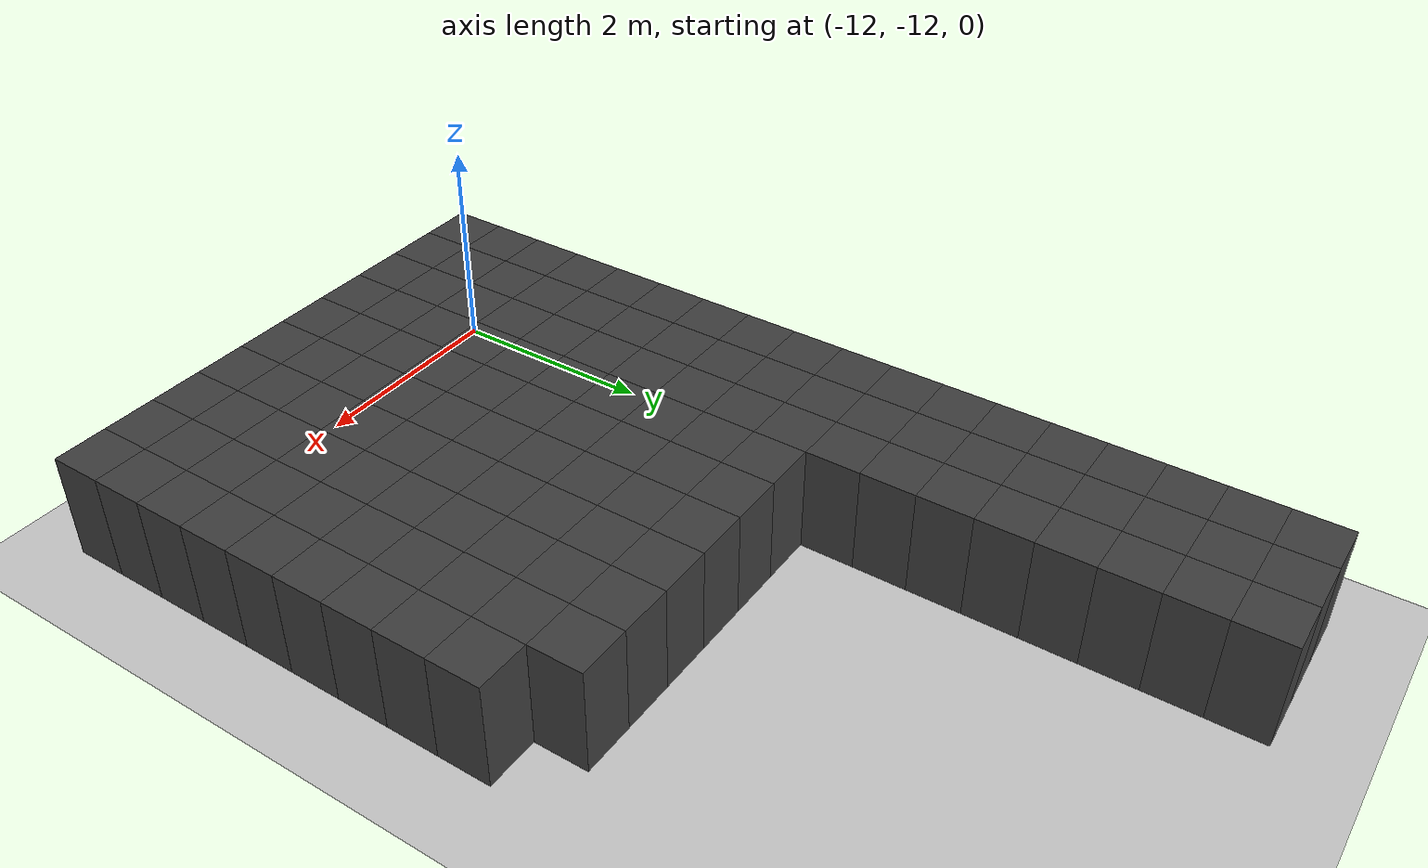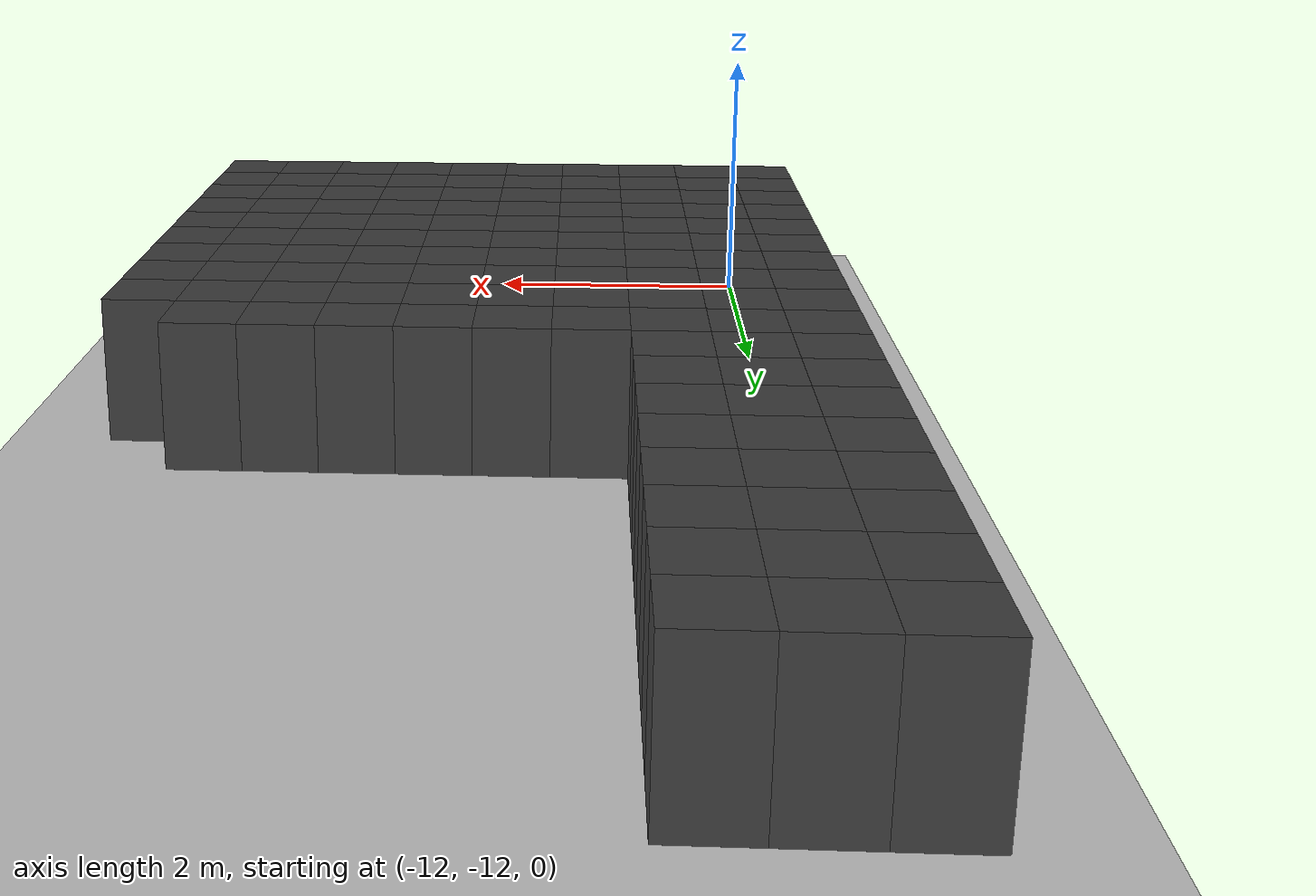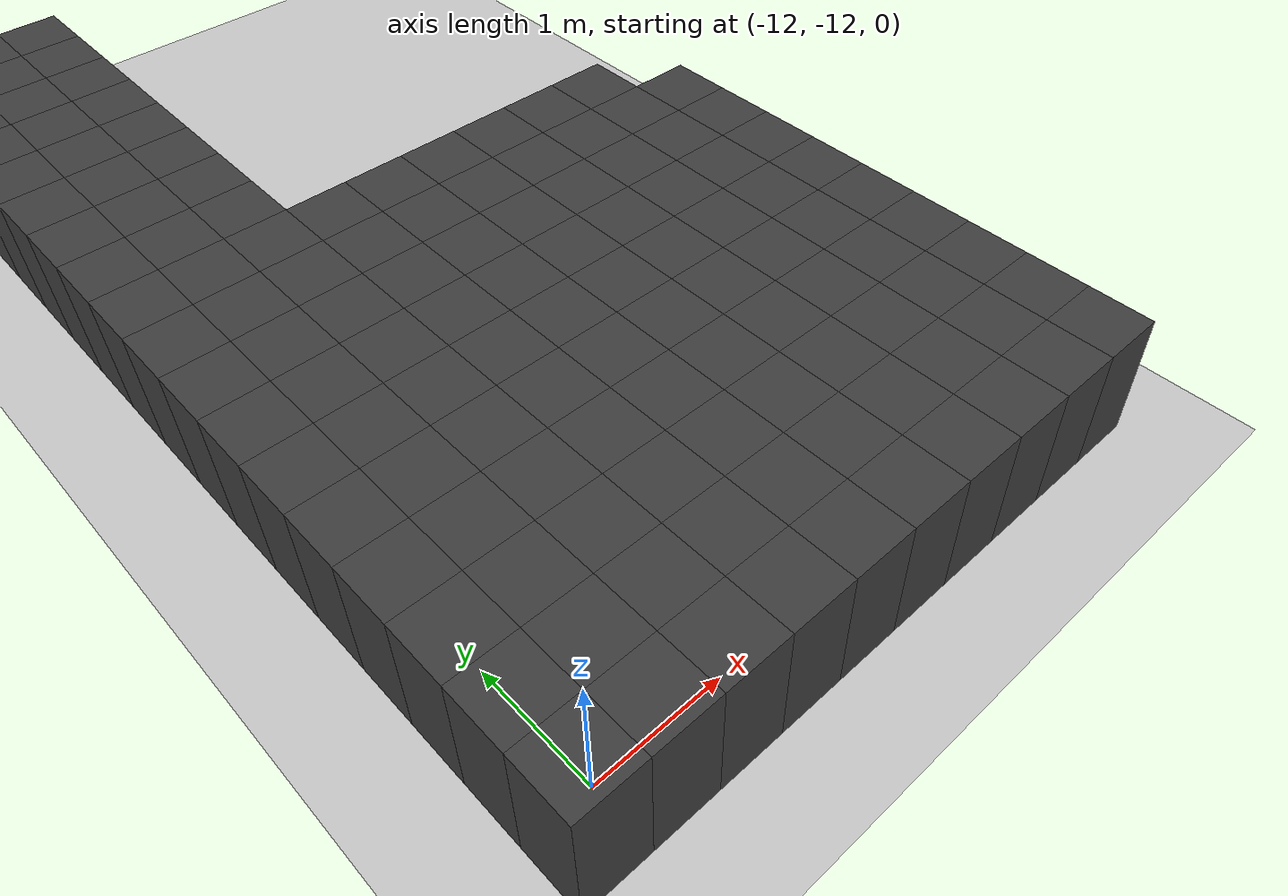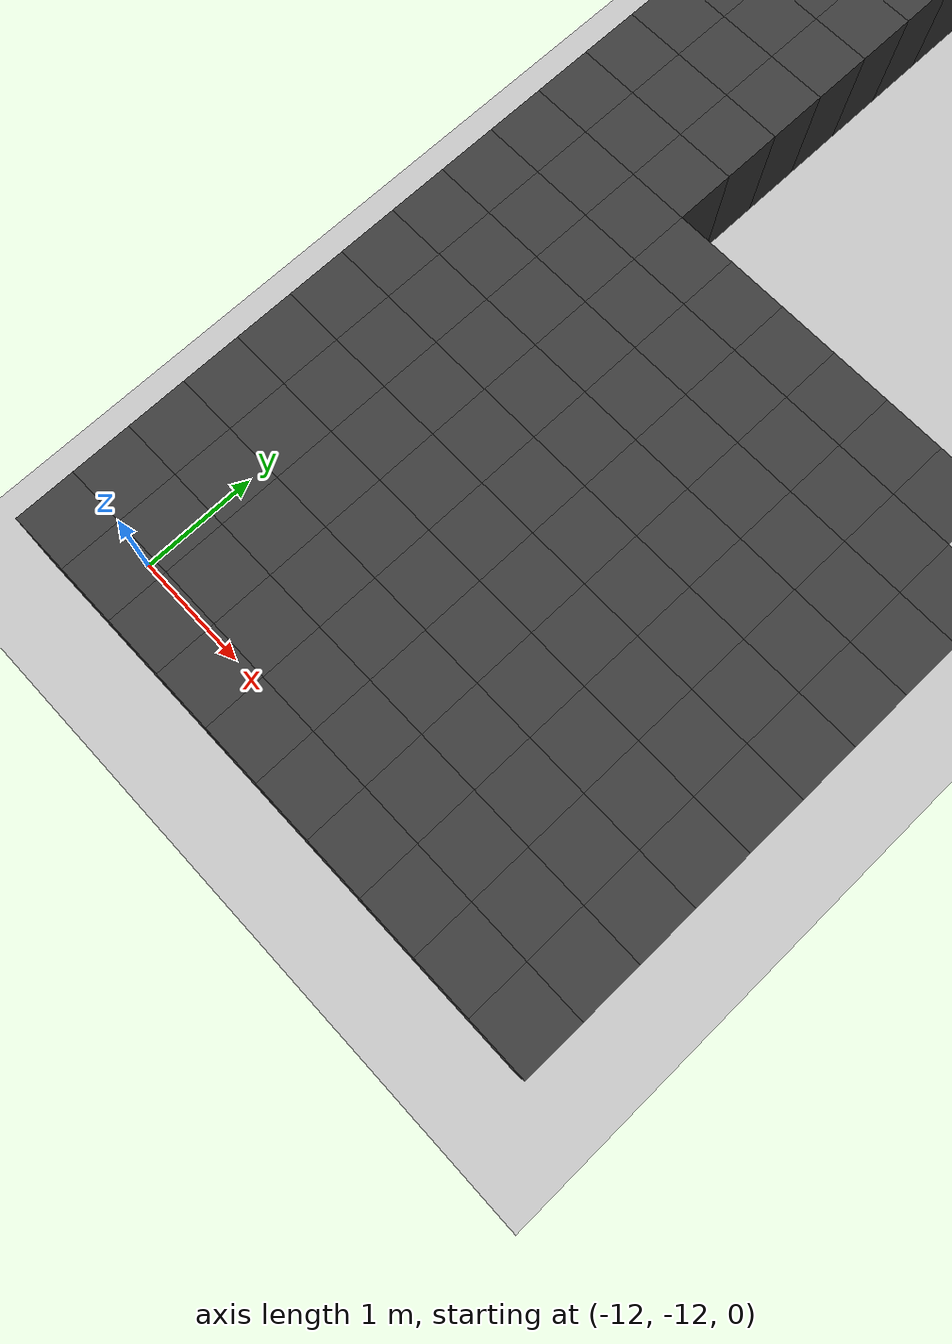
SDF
<sdf version="1.7">
 <world name="map_13820">
  <model name="ground_plane">
   <static>true</static>
   <link name="link">
    <collision name="collision">
     <geometry><plane><normal>0 0 1</normal><size>200 200</size></plane></geometry>
    </collision>
    <visual name="visual">
     <geometry><plane><normal>0 0 1</normal><size>200 200</size></plane></geometry>
     <material><ambient>0.8 0.8 0.8 1</ambient><diffuse>0.8 0.8 0.8 1</diffuse></material>
    </visual>
   </link>
  </model>
  <model name="maze_environment">
   <static>true</static>
   <link name="wall_1112">
    <pose>-12.250 -3.750 0.500 0 0 0</pose>
    <collision name="col"><geometry><box><size>0.5 0.5 1.0</size></box></geometry></collision>
    <visual name="vis">
     <geometry><box><size>0.5 0.5 1.0</size></box></geometry>
     <material><ambient>0.15 0.15 0.15 1</ambient><diffuse>0.25 0.25 0.25 1</diffuse></material>
    </visual>
   </link>
   <link name="wall_1113">
    <pose>-11.750 -3.750 0.500 0 0 0</pose>
    <collision name="col"><geometry><box><size>0.5 0.5 1.0</size></box></geometry></collision>
    <visual name="vis">
     <geometry><box><size>0.5 0.5 1.0</size></box></geometry>
     <material><ambient>0.15 0.15 0.15 1</ambient><diffuse>0.25 0.25 0.25 1</diffuse></material>
    </visual>
   </link>
   <link name="wall_1114">
    <pose>-11.250 -3.750 0.500 0 0 0</pose>
    <collision name="col"><geometry><box><size>0.5 0.5 1.0</size></box></geometry></collision>
    <visual name="vis">
     <geometry><box><size>0.5 0.5 1.0</size></box></geometry>
     <material><ambient>0.15 0.15 0.15 1</ambient><diffuse>0.25 0.25 0.25 1</diffuse></material>
    </visual>
   </link>
   <link name="wall_1139">
    <pose>-12.250 -4.250 0.500 0 0 0</pose>
    <collision name="col"><geometry><box><size>0.5 0.5 1.0</size></box></geometry></collision>
    <visual name="vis">
     <geometry><box><size>0.5 0.5 1.0</size></box></geometry>
     <material><ambient>0.15 0.15 0.15 1</ambient><diffuse>0.25 0.25 0.25 1</diffuse></material>
    </visual>
   </link>
   <link name="wall_1140">
    <pose>-11.750 -4.250 0.500 0 0 0</pose>
    <collision name="col"><geometry><box><size>0.5 0.5 1.0</size></box></geometry></collision>
    <visual name="vis">
     <geometry><box><size>0.5 0.5 1.0</size></box></geometry>
     <material><ambient>0.15 0.15 0.15 1</ambient><diffuse>0.25 0.25 0.25 1</diffuse></material>
    </visual>
   </link>
   <link name="wall_1141">
    <pose>-11.250 -4.250 0.500 0 0 0</pose>
    <collision name="col"><geometry><box><size>0.5 0.5 1.0</size></box></geometry></collision>
    <visual name="vis">
     <geometry><box><size>0.5 0.5 1.0</size></box></geometry>
     <material><ambient>0.15 0.15 0.15 1</ambient><diffuse>0.25 0.25 0.25 1</diffuse></material>
    </visual>
   </link>
   <link name="wall_1166">
    <pose>-12.250 -4.750 0.500 0 0 0</pose>
    <collision name="col"><geometry><box><size>0.5 0.5 1.0</size></box></geometry></collision>
    <visual name="vis">
     <geometry><box><size>0.5 0.5 1.0</size></box></geometry>
     <material><ambient>0.15 0.15 0.15 1</ambient><diffuse>0.25 0.25 0.25 1</diffuse></material>
    </visual>
   </link>
   <link name="wall_1167">
    <pose>-11.750 -4.750 0.500 0 0 0</pose>
    <collision name="col"><geometry><box><size>0.5 0.5 1.0</size></box></geometry></collision>
    <visual name="vis">
     <geometry><box><size>0.5 0.5 1.0</size></box></geometry>
     <material><ambient>0.15 0.15 0.15 1</ambient><diffuse>0.25 0.25 0.25 1</diffuse></material>
    </visual>
   </link>
   <link name="wall_1168">
    <pose>-11.250 -4.750 0.500 0 0 0</pose>
    <collision name="col"><geometry><box><size>0.5 0.5 1.0</size></box></geometry></collision>
    <visual name="vis">
     <geometry><box><size>0.5 0.5 1.0</size></box></geometry>
     <material><ambient>0.15 0.15 0.15 1</ambient><diffuse>0.25 0.25 0.25 1</diffuse></material>
    </visual>
   </link>
   <link name="wall_1193">
    <pose>-12.250 -5.250 0.500 0 0 0</pose>
    <collision name="col"><geometry><box><size>0.5 0.5 1.0</size></box></geometry></collision>
    <visual name="vis">
     <geometry><box><size>0.5 0.5 1.0</size></box></geometry>
     <material><ambient>0.15 0.15 0.15 1</ambient><diffuse>0.25 0.25 0.25 1</diffuse></material>
    </visual>
   </link>
   <link name="wall_1194">
    <pose>-11.750 -5.250 0.500 0 0 0</pose>
    <collision name="col"><geometry><box><size>0.5 0.5 1.0</size></box></geometry></collision>
    <visual name="vis">
     <geometry><box><size>0.5 0.5 1.0</size></box></geometry>
     <material><ambient>0.15 0.15 0.15 1</ambient><diffuse>0.25 0.25 0.25 1</diffuse></material>
    </visual>
   </link>
   <link name="wall_1195">
    <pose>-11.250 -5.250 0.500 0 0 0</pose>
    <collision name="col"><geometry><box><size>0.5 0.5 1.0</size></box></geometry></collision>
    <visual name="vis">
     <geometry><box><size>0.5 0.5 1.0</size></box></geometry>
     <material><ambient>0.15 0.15 0.15 1</ambient><diffuse>0.25 0.25 0.25 1</diffuse></material>
    </visual>
   </link>
   <link name="wall_1228">
    <pose>-12.250 -5.750 0.500 0 0 0</pose>
    <collision name="col"><geometry><box><size>0.5 0.5 1.0</size></box></geometry></collision>
    <visual name="vis">
     <geometry><box><size>0.5 0.5 1.0</size></box></geometry>
     <material><ambient>0.15 0.15 0.15 1</ambient><diffuse>0.25 0.25 0.25 1</diffuse></material>
    </visual>
   </link>
   <link name="wall_1229">
    <pose>-11.750 -5.750 0.500 0 0 0</pose>
    <collision name="col"><geometry><box><size>0.5 0.5 1.0</size></box></geometry></collision>
    <visual name="vis">
     <geometry><box><size>0.5 0.5 1.0</size></box></geometry>
     <material><ambient>0.15 0.15 0.15 1</ambient><diffuse>0.25 0.25 0.25 1</diffuse></material>
    </visual>
   </link>
   <link name="wall_1230">
    <pose>-11.250 -5.750 0.500 0 0 0</pose>
    <collision name="col"><geometry><box><size>0.5 0.5 1.0</size></box></geometry></collision>
    <visual name="vis">
     <geometry><box><size>0.5 0.5 1.0</size></box></geometry>
     <material><ambient>0.15 0.15 0.15 1</ambient><diffuse>0.25 0.25 0.25 1</diffuse></material>
    </visual>
   </link>
   <link name="wall_1263">
    <pose>-12.250 -6.250 0.500 0 0 0</pose>
    <collision name="col"><geometry><box><size>0.5 0.5 1.0</size></box></geometry></collision>
    <visual name="vis">
     <geometry><box><size>0.5 0.5 1.0</size></box></geometry>
     <material><ambient>0.15 0.15 0.15 1</ambient><diffuse>0.25 0.25 0.25 1</diffuse></material>
    </visual>
   </link>
   <link name="wall_1264">
    <pose>-11.750 -6.250 0.500 0 0 0</pose>
    <collision name="col"><geometry><box><size>0.5 0.5 1.0</size></box></geometry></collision>
    <visual name="vis">
     <geometry><box><size>0.5 0.5 1.0</size></box></geometry>
     <material><ambient>0.15 0.15 0.15 1</ambient><diffuse>0.25 0.25 0.25 1</diffuse></material>
    </visual>
   </link>
   <link name="wall_1265">
    <pose>-11.250 -6.250 0.500 0 0 0</pose>
    <collision name="col"><geometry><box><size>0.5 0.5 1.0</size></box></geometry></collision>
    <visual name="vis">
     <geometry><box><size>0.5 0.5 1.0</size></box></geometry>
     <material><ambient>0.15 0.15 0.15 1</ambient><diffuse>0.25 0.25 0.25 1</diffuse></material>
    </visual>
   </link>
   <link name="wall_1298">
    <pose>-12.250 -6.750 0.500 0 0 0</pose>
    <collision name="col"><geometry><box><size>0.5 0.5 1.0</size></box></geometry></collision>
    <visual name="vis">
     <geometry><box><size>0.5 0.5 1.0</size></box></geometry>
     <material><ambient>0.15 0.15 0.15 1</ambient><diffuse>0.25 0.25 0.25 1</diffuse></material>
    </visual>
   </link>
   <link name="wall_1299">
    <pose>-11.750 -6.750 0.500 0 0 0</pose>
    <collision name="col"><geometry><box><size>0.5 0.5 1.0</size></box></geometry></collision>
    <visual name="vis">
     <geometry><box><size>0.5 0.5 1.0</size></box></geometry>
     <material><ambient>0.15 0.15 0.15 1</ambient><diffuse>0.25 0.25 0.25 1</diffuse></material>
    </visual>
   </link>
   <link name="wall_1300">
    <pose>-11.250 -6.750 0.500 0 0 0</pose>
    <collision name="col"><geometry><box><size>0.5 0.5 1.0</size></box></geometry></collision>
    <visual name="vis">
     <geometry><box><size>0.5 0.5 1.0</size></box></geometry>
     <material><ambient>0.15 0.15 0.15 1</ambient><diffuse>0.25 0.25 0.25 1</diffuse></material>
    </visual>
   </link>
   <link name="wall_1340">
    <pose>-12.250 -7.250 0.500 0 0 0</pose>
    <collision name="col"><geometry><box><size>0.5 0.5 1.0</size></box></geometry></collision>
    <visual name="vis">
     <geometry><box><size>0.5 0.5 1.0</size></box></geometry>
     <material><ambient>0.15 0.15 0.15 1</ambient><diffuse>0.25 0.25 0.25 1</diffuse></material>
    </visual>
   </link>
   <link name="wall_1341">
    <pose>-11.750 -7.250 0.500 0 0 0</pose>
    <collision name="col"><geometry><box><size>0.5 0.5 1.0</size></box></geometry></collision>
    <visual name="vis">
     <geometry><box><size>0.5 0.5 1.0</size></box></geometry>
     <material><ambient>0.15 0.15 0.15 1</ambient><diffuse>0.25 0.25 0.25 1</diffuse></material>
    </visual>
   </link>
   <link name="wall_1342">
    <pose>-11.250 -7.250 0.500 0 0 0</pose>
    <collision name="col"><geometry><box><size>0.5 0.5 1.0</size></box></geometry></collision>
    <visual name="vis">
     <geometry><box><size>0.5 0.5 1.0</size></box></geometry>
     <material><ambient>0.15 0.15 0.15 1</ambient><diffuse>0.25 0.25 0.25 1</diffuse></material>
    </visual>
   </link>
   <link name="wall_1382">
    <pose>-12.250 -7.750 0.500 0 0 0</pose>
    <collision name="col"><geometry><box><size>0.5 0.5 1.0</size></box></geometry></collision>
    <visual name="vis">
     <geometry><box><size>0.5 0.5 1.0</size></box></geometry>
     <material><ambient>0.15 0.15 0.15 1</ambient><diffuse>0.25 0.25 0.25 1</diffuse></material>
    </visual>
   </link>
   <link name="wall_1383">
    <pose>-11.750 -7.750 0.500 0 0 0</pose>
    <collision name="col"><geometry><box><size>0.5 0.5 1.0</size></box></geometry></collision>
    <visual name="vis">
     <geometry><box><size>0.5 0.5 1.0</size></box></geometry>
     <material><ambient>0.15 0.15 0.15 1</ambient><diffuse>0.25 0.25 0.25 1</diffuse></material>
    </visual>
   </link>
   <link name="wall_1384">
    <pose>-11.250 -7.750 0.500 0 0 0</pose>
    <collision name="col"><geometry><box><size>0.5 0.5 1.0</size></box></geometry></collision>
    <visual name="vis">
     <geometry><box><size>0.5 0.5 1.0</size></box></geometry>
     <material><ambient>0.15 0.15 0.15 1</ambient><diffuse>0.25 0.25 0.25 1</diffuse></material>
    </visual>
   </link>
   <link name="wall_1385">
    <pose>-10.750 -7.750 0.500 0 0 0</pose>
    <collision name="col"><geometry><box><size>0.5 0.5 1.0</size></box></geometry></collision>
    <visual name="vis">
     <geometry><box><size>0.5 0.5 1.0</size></box></geometry>
     <material><ambient>0.15 0.15 0.15 1</ambient><diffuse>0.25 0.25 0.25 1</diffuse></material>
    </visual>
   </link>
   <link name="wall_1386">
    <pose>-10.250 -7.750 0.500 0 0 0</pose>
    <collision name="col"><geometry><box><size>0.5 0.5 1.0</size></box></geometry></collision>
    <visual name="vis">
     <geometry><box><size>0.5 0.5 1.0</size></box></geometry>
     <material><ambient>0.15 0.15 0.15 1</ambient><diffuse>0.25 0.25 0.25 1</diffuse></material>
    </visual>
   </link>
   <link name="wall_1387">
    <pose>-9.750 -7.750 0.500 0 0 0</pose>
    <collision name="col"><geometry><box><size>0.5 0.5 1.0</size></box></geometry></collision>
    <visual name="vis">
     <geometry><box><size>0.5 0.5 1.0</size></box></geometry>
     <material><ambient>0.15 0.15 0.15 1</ambient><diffuse>0.25 0.25 0.25 1</diffuse></material>
    </visual>
   </link>
   <link name="wall_1388">
    <pose>-9.250 -7.750 0.500 0 0 0</pose>
    <collision name="col"><geometry><box><size>0.5 0.5 1.0</size></box></geometry></collision>
    <visual name="vis">
     <geometry><box><size>0.5 0.5 1.0</size></box></geometry>
     <material><ambient>0.15 0.15 0.15 1</ambient><diffuse>0.25 0.25 0.25 1</diffuse></material>
    </visual>
   </link>
   <link name="wall_1389">
    <pose>-8.750 -7.750 0.500 0 0 0</pose>
    <collision name="col"><geometry><box><size>0.5 0.5 1.0</size></box></geometry></collision>
    <visual name="vis">
     <geometry><box><size>0.5 0.5 1.0</size></box></geometry>
     <material><ambient>0.15 0.15 0.15 1</ambient><diffuse>0.25 0.25 0.25 1</diffuse></material>
    </visual>
   </link>
   <link name="wall_1390">
    <pose>-8.250 -7.750 0.500 0 0 0</pose>
    <collision name="col"><geometry><box><size>0.5 0.5 1.0</size></box></geometry></collision>
    <visual name="vis">
     <geometry><box><size>0.5 0.5 1.0</size></box></geometry>
     <material><ambient>0.15 0.15 0.15 1</ambient><diffuse>0.25 0.25 0.25 1</diffuse></material>
    </visual>
   </link>
   <link name="wall_1431">
    <pose>-12.250 -8.250 0.500 0 0 0</pose>
    <collision name="col"><geometry><box><size>0.5 0.5 1.0</size></box></geometry></collision>
    <visual name="vis">
     <geometry><box><size>0.5 0.5 1.0</size></box></geometry>
     <material><ambient>0.15 0.15 0.15 1</ambient><diffuse>0.25 0.25 0.25 1</diffuse></material>
    </visual>
   </link>
   <link name="wall_1432">
    <pose>-11.750 -8.250 0.500 0 0 0</pose>
    <collision name="col"><geometry><box><size>0.5 0.5 1.0</size></box></geometry></collision>
    <visual name="vis">
     <geometry><box><size>0.5 0.5 1.0</size></box></geometry>
     <material><ambient>0.15 0.15 0.15 1</ambient><diffuse>0.25 0.25 0.25 1</diffuse></material>
    </visual>
   </link>
   <link name="wall_1433">
    <pose>-11.250 -8.250 0.500 0 0 0</pose>
    <collision name="col"><geometry><box><size>0.5 0.5 1.0</size></box></geometry></collision>
    <visual name="vis">
     <geometry><box><size>0.5 0.5 1.0</size></box></geometry>
     <material><ambient>0.15 0.15 0.15 1</ambient><diffuse>0.25 0.25 0.25 1</diffuse></material>
    </visual>
   </link>
   <link name="wall_1434">
    <pose>-10.750 -8.250 0.500 0 0 0</pose>
    <collision name="col"><geometry><box><size>0.5 0.5 1.0</size></box></geometry></collision>
    <visual name="vis">
     <geometry><box><size>0.5 0.5 1.0</size></box></geometry>
     <material><ambient>0.15 0.15 0.15 1</ambient><diffuse>0.25 0.25 0.25 1</diffuse></material>
    </visual>
   </link>
   <link name="wall_1435">
    <pose>-10.250 -8.250 0.500 0 0 0</pose>
    <collision name="col"><geometry><box><size>0.5 0.5 1.0</size></box></geometry></collision>
    <visual name="vis">
     <geometry><box><size>0.5 0.5 1.0</size></box></geometry>
     <material><ambient>0.15 0.15 0.15 1</ambient><diffuse>0.25 0.25 0.25 1</diffuse></material>
    </visual>
   </link>
   <link name="wall_1436">
    <pose>-9.750 -8.250 0.500 0 0 0</pose>
    <collision name="col"><geometry><box><size>0.5 0.5 1.0</size></box></geometry></collision>
    <visual name="vis">
     <geometry><box><size>0.5 0.5 1.0</size></box></geometry>
     <material><ambient>0.15 0.15 0.15 1</ambient><diffuse>0.25 0.25 0.25 1</diffuse></material>
    </visual>
   </link>
   <link name="wall_1437">
    <pose>-9.250 -8.250 0.500 0 0 0</pose>
    <collision name="col"><geometry><box><size>0.5 0.5 1.0</size></box></geometry></collision>
    <visual name="vis">
     <geometry><box><size>0.5 0.5 1.0</size></box></geometry>
     <material><ambient>0.15 0.15 0.15 1</ambient><diffuse>0.25 0.25 0.25 1</diffuse></material>
    </visual>
   </link>
   <link name="wall_1438">
    <pose>-8.750 -8.250 0.500 0 0 0</pose>
    <collision name="col"><geometry><box><size>0.5 0.5 1.0</size></box></geometry></collision>
    <visual name="vis">
     <geometry><box><size>0.5 0.5 1.0</size></box></geometry>
     <material><ambient>0.15 0.15 0.15 1</ambient><diffuse>0.25 0.25 0.25 1</diffuse></material>
    </visual>
   </link>
   <link name="wall_1439">
    <pose>-8.250 -8.250 0.500 0 0 0</pose>
    <collision name="col"><geometry><box><size>0.5 0.5 1.0</size></box></geometry></collision>
    <visual name="vis">
     <geometry><box><size>0.5 0.5 1.0</size></box></geometry>
     <material><ambient>0.15 0.15 0.15 1</ambient><diffuse>0.25 0.25 0.25 1</diffuse></material>
    </visual>
   </link>
   <link name="wall_1440">
    <pose>-7.750 -8.250 0.500 0 0 0</pose>
    <collision name="col"><geometry><box><size>0.5 0.5 1.0</size></box></geometry></collision>
    <visual name="vis">
     <geometry><box><size>0.5 0.5 1.0</size></box></geometry>
     <material><ambient>0.15 0.15 0.15 1</ambient><diffuse>0.25 0.25 0.25 1</diffuse></material>
    </visual>
   </link>
   <link name="wall_1480">
    <pose>-12.250 -8.750 0.500 0 0 0</pose>
    <collision name="col"><geometry><box><size>0.5 0.5 1.0</size></box></geometry></collision>
    <visual name="vis">
     <geometry><box><size>0.5 0.5 1.0</size></box></geometry>
     <material><ambient>0.15 0.15 0.15 1</ambient><diffuse>0.25 0.25 0.25 1</diffuse></material>
    </visual>
   </link>
   <link name="wall_1481">
    <pose>-11.750 -8.750 0.500 0 0 0</pose>
    <collision name="col"><geometry><box><size>0.5 0.5 1.0</size></box></geometry></collision>
    <visual name="vis">
     <geometry><box><size>0.5 0.5 1.0</size></box></geometry>
     <material><ambient>0.15 0.15 0.15 1</ambient><diffuse>0.25 0.25 0.25 1</diffuse></material>
    </visual>
   </link>
   <link name="wall_1482">
    <pose>-11.250 -8.750 0.500 0 0 0</pose>
    <collision name="col"><geometry><box><size>0.5 0.5 1.0</size></box></geometry></collision>
    <visual name="vis">
     <geometry><box><size>0.5 0.5 1.0</size></box></geometry>
     <material><ambient>0.15 0.15 0.15 1</ambient><diffuse>0.25 0.25 0.25 1</diffuse></material>
    </visual>
   </link>
   <link name="wall_1483">
    <pose>-10.750 -8.750 0.500 0 0 0</pose>
    <collision name="col"><geometry><box><size>0.5 0.5 1.0</size></box></geometry></collision>
    <visual name="vis">
     <geometry><box><size>0.5 0.5 1.0</size></box></geometry>
     <material><ambient>0.15 0.15 0.15 1</ambient><diffuse>0.25 0.25 0.25 1</diffuse></material>
    </visual>
   </link>
   <link name="wall_1484">
    <pose>-10.250 -8.750 0.500 0 0 0</pose>
    <collision name="col"><geometry><box><size>0.5 0.5 1.0</size></box></geometry></collision>
    <visual name="vis">
     <geometry><box><size>0.5 0.5 1.0</size></box></geometry>
     <material><ambient>0.15 0.15 0.15 1</ambient><diffuse>0.25 0.25 0.25 1</diffuse></material>
    </visual>
   </link>
   <link name="wall_1485">
    <pose>-9.750 -8.750 0.500 0 0 0</pose>
    <collision name="col"><geometry><box><size>0.5 0.5 1.0</size></box></geometry></collision>
    <visual name="vis">
     <geometry><box><size>0.5 0.5 1.0</size></box></geometry>
     <material><ambient>0.15 0.15 0.15 1</ambient><diffuse>0.25 0.25 0.25 1</diffuse></material>
    </visual>
   </link>
   <link name="wall_1486">
    <pose>-9.250 -8.750 0.500 0 0 0</pose>
    <collision name="col"><geometry><box><size>0.5 0.5 1.0</size></box></geometry></collision>
    <visual name="vis">
     <geometry><box><size>0.5 0.5 1.0</size></box></geometry>
     <material><ambient>0.15 0.15 0.15 1</ambient><diffuse>0.25 0.25 0.25 1</diffuse></material>
    </visual>
   </link>
   <link name="wall_1487">
    <pose>-8.750 -8.750 0.500 0 0 0</pose>
    <collision name="col"><geometry><box><size>0.5 0.5 1.0</size></box></geometry></collision>
    <visual name="vis">
     <geometry><box><size>0.5 0.5 1.0</size></box></geometry>
     <material><ambient>0.15 0.15 0.15 1</ambient><diffuse>0.25 0.25 0.25 1</diffuse></material>
    </visual>
   </link>
   <link name="wall_1488">
    <pose>-8.250 -8.750 0.500 0 0 0</pose>
    <collision name="col"><geometry><box><size>0.5 0.5 1.0</size></box></geometry></collision>
    <visual name="vis">
     <geometry><box><size>0.5 0.5 1.0</size></box></geometry>
     <material><ambient>0.15 0.15 0.15 1</ambient><diffuse>0.25 0.25 0.25 1</diffuse></material>
    </visual>
   </link>
   <link name="wall_1489">
    <pose>-7.750 -8.750 0.500 0 0 0</pose>
    <collision name="col"><geometry><box><size>0.5 0.5 1.0</size></box></geometry></collision>
    <visual name="vis">
     <geometry><box><size>0.5 0.5 1.0</size></box></geometry>
     <material><ambient>0.15 0.15 0.15 1</ambient><diffuse>0.25 0.25 0.25 1</diffuse></material>
    </visual>
   </link>
   <link name="wall_1529">
    <pose>-12.250 -9.250 0.500 0 0 0</pose>
    <collision name="col"><geometry><box><size>0.5 0.5 1.0</size></box></geometry></collision>
    <visual name="vis">
     <geometry><box><size>0.5 0.5 1.0</size></box></geometry>
     <material><ambient>0.15 0.15 0.15 1</ambient><diffuse>0.25 0.25 0.25 1</diffuse></material>
    </visual>
   </link>
   <link name="wall_1530">
    <pose>-11.750 -9.250 0.500 0 0 0</pose>
    <collision name="col"><geometry><box><size>0.5 0.5 1.0</size></box></geometry></collision>
    <visual name="vis">
     <geometry><box><size>0.5 0.5 1.0</size></box></geometry>
     <material><ambient>0.15 0.15 0.15 1</ambient><diffuse>0.25 0.25 0.25 1</diffuse></material>
    </visual>
   </link>
   <link name="wall_1531">
    <pose>-11.250 -9.250 0.500 0 0 0</pose>
    <collision name="col"><geometry><box><size>0.5 0.5 1.0</size></box></geometry></collision>
    <visual name="vis">
     <geometry><box><size>0.5 0.5 1.0</size></box></geometry>
     <material><ambient>0.15 0.15 0.15 1</ambient><diffuse>0.25 0.25 0.25 1</diffuse></material>
    </visual>
   </link>
   <link name="wall_1532">
    <pose>-10.750 -9.250 0.500 0 0 0</pose>
    <collision name="col"><geometry><box><size>0.5 0.5 1.0</size></box></geometry></collision>
    <visual name="vis">
     <geometry><box><size>0.5 0.5 1.0</size></box></geometry>
     <material><ambient>0.15 0.15 0.15 1</ambient><diffuse>0.25 0.25 0.25 1</diffuse></material>
    </visual>
   </link>
   <link name="wall_1533">
    <pose>-10.250 -9.250 0.500 0 0 0</pose>
    <collision name="col"><geometry><box><size>0.5 0.5 1.0</size></box></geometry></collision>
    <visual name="vis">
     <geometry><box><size>0.5 0.5 1.0</size></box></geometry>
     <material><ambient>0.15 0.15 0.15 1</ambient><diffuse>0.25 0.25 0.25 1</diffuse></material>
    </visual>
   </link>
   <link name="wall_1534">
    <pose>-9.750 -9.250 0.500 0 0 0</pose>
    <collision name="col"><geometry><box><size>0.5 0.5 1.0</size></box></geometry></collision>
    <visual name="vis">
     <geometry><box><size>0.5 0.5 1.0</size></box></geometry>
     <material><ambient>0.15 0.15 0.15 1</ambient><diffuse>0.25 0.25 0.25 1</diffuse></material>
    </visual>
   </link>
   <link name="wall_1535">
    <pose>-9.250 -9.250 0.500 0 0 0</pose>
    <collision name="col"><geometry><box><size>0.5 0.5 1.0</size></box></geometry></collision>
    <visual name="vis">
     <geometry><box><size>0.5 0.5 1.0</size></box></geometry>
     <material><ambient>0.15 0.15 0.15 1</ambient><diffuse>0.25 0.25 0.25 1</diffuse></material>
    </visual>
   </link>
   <link name="wall_1536">
    <pose>-8.750 -9.250 0.500 0 0 0</pose>
    <collision name="col"><geometry><box><size>0.5 0.5 1.0</size></box></geometry></collision>
    <visual name="vis">
     <geometry><box><size>0.5 0.5 1.0</size></box></geometry>
     <material><ambient>0.15 0.15 0.15 1</ambient><diffuse>0.25 0.25 0.25 1</diffuse></material>
    </visual>
   </link>
   <link name="wall_1537">
    <pose>-8.250 -9.250 0.500 0 0 0</pose>
    <collision name="col"><geometry><box><size>0.5 0.5 1.0</size></box></geometry></collision>
    <visual name="vis">
     <geometry><box><size>0.5 0.5 1.0</size></box></geometry>
     <material><ambient>0.15 0.15 0.15 1</ambient><diffuse>0.25 0.25 0.25 1</diffuse></material>
    </visual>
   </link>
   <link name="wall_1538">
    <pose>-7.750 -9.250 0.500 0 0 0</pose>
    <collision name="col"><geometry><box><size>0.5 0.5 1.0</size></box></geometry></collision>
    <visual name="vis">
     <geometry><box><size>0.5 0.5 1.0</size></box></geometry>
     <material><ambient>0.15 0.15 0.15 1</ambient><diffuse>0.25 0.25 0.25 1</diffuse></material>
    </visual>
   </link>
   <link name="wall_1578">
    <pose>-12.250 -9.750 0.500 0 0 0</pose>
    <collision name="col"><geometry><box><size>0.5 0.5 1.0</size></box></geometry></collision>
    <visual name="vis">
     <geometry><box><size>0.5 0.5 1.0</size></box></geometry>
     <material><ambient>0.15 0.15 0.15 1</ambient><diffuse>0.25 0.25 0.25 1</diffuse></material>
    </visual>
   </link>
   <link name="wall_1579">
    <pose>-11.750 -9.750 0.500 0 0 0</pose>
    <collision name="col"><geometry><box><size>0.5 0.5 1.0</size></box></geometry></collision>
    <visual name="vis">
     <geometry><box><size>0.5 0.5 1.0</size></box></geometry>
     <material><ambient>0.15 0.15 0.15 1</ambient><diffuse>0.25 0.25 0.25 1</diffuse></material>
    </visual>
   </link>
   <link name="wall_1580">
    <pose>-11.250 -9.750 0.500 0 0 0</pose>
    <collision name="col"><geometry><box><size>0.5 0.5 1.0</size></box></geometry></collision>
    <visual name="vis">
     <geometry><box><size>0.5 0.5 1.0</size></box></geometry>
     <material><ambient>0.15 0.15 0.15 1</ambient><diffuse>0.25 0.25 0.25 1</diffuse></material>
    </visual>
   </link>
   <link name="wall_1581">
    <pose>-10.750 -9.750 0.500 0 0 0</pose>
    <collision name="col"><geometry><box><size>0.5 0.5 1.0</size></box></geometry></collision>
    <visual name="vis">
     <geometry><box><size>0.5 0.5 1.0</size></box></geometry>
     <material><ambient>0.15 0.15 0.15 1</ambient><diffuse>0.25 0.25 0.25 1</diffuse></material>
    </visual>
   </link>
   <link name="wall_1582">
    <pose>-10.250 -9.750 0.500 0 0 0</pose>
    <collision name="col"><geometry><box><size>0.5 0.5 1.0</size></box></geometry></collision>
    <visual name="vis">
     <geometry><box><size>0.5 0.5 1.0</size></box></geometry>
     <material><ambient>0.15 0.15 0.15 1</ambient><diffuse>0.25 0.25 0.25 1</diffuse></material>
    </visual>
   </link>
   <link name="wall_1583">
    <pose>-9.750 -9.750 0.500 0 0 0</pose>
    <collision name="col"><geometry><box><size>0.5 0.5 1.0</size></box></geometry></collision>
    <visual name="vis">
     <geometry><box><size>0.5 0.5 1.0</size></box></geometry>
     <material><ambient>0.15 0.15 0.15 1</ambient><diffuse>0.25 0.25 0.25 1</diffuse></material>
    </visual>
   </link>
   <link name="wall_1584">
    <pose>-9.250 -9.750 0.500 0 0 0</pose>
    <collision name="col"><geometry><box><size>0.5 0.5 1.0</size></box></geometry></collision>
    <visual name="vis">
     <geometry><box><size>0.5 0.5 1.0</size></box></geometry>
     <material><ambient>0.15 0.15 0.15 1</ambient><diffuse>0.25 0.25 0.25 1</diffuse></material>
    </visual>
   </link>
   <link name="wall_1585">
    <pose>-8.750 -9.750 0.500 0 0 0</pose>
    <collision name="col"><geometry><box><size>0.5 0.5 1.0</size></box></geometry></collision>
    <visual name="vis">
     <geometry><box><size>0.5 0.5 1.0</size></box></geometry>
     <material><ambient>0.15 0.15 0.15 1</ambient><diffuse>0.25 0.25 0.25 1</diffuse></material>
    </visual>
   </link>
   <link name="wall_1586">
    <pose>-8.250 -9.750 0.500 0 0 0</pose>
    <collision name="col"><geometry><box><size>0.5 0.5 1.0</size></box></geometry></collision>
    <visual name="vis">
     <geometry><box><size>0.5 0.5 1.0</size></box></geometry>
     <material><ambient>0.15 0.15 0.15 1</ambient><diffuse>0.25 0.25 0.25 1</diffuse></material>
    </visual>
   </link>
   <link name="wall_1587">
    <pose>-7.750 -9.750 0.500 0 0 0</pose>
    <collision name="col"><geometry><box><size>0.5 0.5 1.0</size></box></geometry></collision>
    <visual name="vis">
     <geometry><box><size>0.5 0.5 1.0</size></box></geometry>
     <material><ambient>0.15 0.15 0.15 1</ambient><diffuse>0.25 0.25 0.25 1</diffuse></material>
    </visual>
   </link>
   <link name="wall_1627">
    <pose>-12.250 -10.250 0.500 0 0 0</pose>
    <collision name="col"><geometry><box><size>0.5 0.5 1.0</size></box></geometry></collision>
    <visual name="vis">
     <geometry><box><size>0.5 0.5 1.0</size></box></geometry>
     <material><ambient>0.15 0.15 0.15 1</ambient><diffuse>0.25 0.25 0.25 1</diffuse></material>
    </visual>
   </link>
   <link name="wall_1628">
    <pose>-11.750 -10.250 0.500 0 0 0</pose>
    <collision name="col"><geometry><box><size>0.5 0.5 1.0</size></box></geometry></collision>
    <visual name="vis">
     <geometry><box><size>0.5 0.5 1.0</size></box></geometry>
     <material><ambient>0.15 0.15 0.15 1</ambient><diffuse>0.25 0.25 0.25 1</diffuse></material>
    </visual>
   </link>
   <link name="wall_1629">
    <pose>-11.250 -10.250 0.500 0 0 0</pose>
    <collision name="col"><geometry><box><size>0.5 0.5 1.0</size></box></geometry></collision>
    <visual name="vis">
     <geometry><box><size>0.5 0.5 1.0</size></box></geometry>
     <material><ambient>0.15 0.15 0.15 1</ambient><diffuse>0.25 0.25 0.25 1</diffuse></material>
    </visual>
   </link>
   <link name="wall_1630">
    <pose>-10.750 -10.250 0.500 0 0 0</pose>
    <collision name="col"><geometry><box><size>0.5 0.5 1.0</size></box></geometry></collision>
    <visual name="vis">
     <geometry><box><size>0.5 0.5 1.0</size></box></geometry>
     <material><ambient>0.15 0.15 0.15 1</ambient><diffuse>0.25 0.25 0.25 1</diffuse></material>
    </visual>
   </link>
   <link name="wall_1631">
    <pose>-10.250 -10.250 0.500 0 0 0</pose>
    <collision name="col"><geometry><box><size>0.5 0.5 1.0</size></box></geometry></collision>
    <visual name="vis">
     <geometry><box><size>0.5 0.5 1.0</size></box></geometry>
     <material><ambient>0.15 0.15 0.15 1</ambient><diffuse>0.25 0.25 0.25 1</diffuse></material>
    </visual>
   </link>
   <link name="wall_1632">
    <pose>-9.750 -10.250 0.500 0 0 0</pose>
    <collision name="col"><geometry><box><size>0.5 0.5 1.0</size></box></geometry></collision>
    <visual name="vis">
     <geometry><box><size>0.5 0.5 1.0</size></box></geometry>
     <material><ambient>0.15 0.15 0.15 1</ambient><diffuse>0.25 0.25 0.25 1</diffuse></material>
    </visual>
   </link>
   <link name="wall_1633">
    <pose>-9.250 -10.250 0.500 0 0 0</pose>
    <collision name="col"><geometry><box><size>0.5 0.5 1.0</size></box></geometry></collision>
    <visual name="vis">
     <geometry><box><size>0.5 0.5 1.0</size></box></geometry>
     <material><ambient>0.15 0.15 0.15 1</ambient><diffuse>0.25 0.25 0.25 1</diffuse></material>
    </visual>
   </link>
   <link name="wall_1634">
    <pose>-8.750 -10.250 0.500 0 0 0</pose>
    <collision name="col"><geometry><box><size>0.5 0.5 1.0</size></box></geometry></collision>
    <visual name="vis">
     <geometry><box><size>0.5 0.5 1.0</size></box></geometry>
     <material><ambient>0.15 0.15 0.15 1</ambient><diffuse>0.25 0.25 0.25 1</diffuse></material>
    </visual>
   </link>
   <link name="wall_1635">
    <pose>-8.250 -10.250 0.500 0 0 0</pose>
    <collision name="col"><geometry><box><size>0.5 0.5 1.0</size></box></geometry></collision>
    <visual name="vis">
     <geometry><box><size>0.5 0.5 1.0</size></box></geometry>
     <material><ambient>0.15 0.15 0.15 1</ambient><diffuse>0.25 0.25 0.25 1</diffuse></material>
    </visual>
   </link>
   <link name="wall_1636">
    <pose>-7.750 -10.250 0.500 0 0 0</pose>
    <collision name="col"><geometry><box><size>0.5 0.5 1.0</size></box></geometry></collision>
    <visual name="vis">
     <geometry><box><size>0.5 0.5 1.0</size></box></geometry>
     <material><ambient>0.15 0.15 0.15 1</ambient><diffuse>0.25 0.25 0.25 1</diffuse></material>
    </visual>
   </link>
   <link name="wall_1676">
    <pose>-12.250 -10.750 0.500 0 0 0</pose>
    <collision name="col"><geometry><box><size>0.5 0.5 1.0</size></box></geometry></collision>
    <visual name="vis">
     <geometry><box><size>0.5 0.5 1.0</size></box></geometry>
     <material><ambient>0.15 0.15 0.15 1</ambient><diffuse>0.25 0.25 0.25 1</diffuse></material>
    </visual>
   </link>
   <link name="wall_1677">
    <pose>-11.750 -10.750 0.500 0 0 0</pose>
    <collision name="col"><geometry><box><size>0.5 0.5 1.0</size></box></geometry></collision>
    <visual name="vis">
     <geometry><box><size>0.5 0.5 1.0</size></box></geometry>
     <material><ambient>0.15 0.15 0.15 1</ambient><diffuse>0.25 0.25 0.25 1</diffuse></material>
    </visual>
   </link>
   <link name="wall_1678">
    <pose>-11.250 -10.750 0.500 0 0 0</pose>
    <collision name="col"><geometry><box><size>0.5 0.5 1.0</size></box></geometry></collision>
    <visual name="vis">
     <geometry><box><size>0.5 0.5 1.0</size></box></geometry>
     <material><ambient>0.15 0.15 0.15 1</ambient><diffuse>0.25 0.25 0.25 1</diffuse></material>
    </visual>
   </link>
   <link name="wall_1679">
    <pose>-10.750 -10.750 0.500 0 0 0</pose>
    <collision name="col"><geometry><box><size>0.5 0.5 1.0</size></box></geometry></collision>
    <visual name="vis">
     <geometry><box><size>0.5 0.5 1.0</size></box></geometry>
     <material><ambient>0.15 0.15 0.15 1</ambient><diffuse>0.25 0.25 0.25 1</diffuse></material>
    </visual>
   </link>
   <link name="wall_1680">
    <pose>-10.250 -10.750 0.500 0 0 0</pose>
    <collision name="col"><geometry><box><size>0.5 0.5 1.0</size></box></geometry></collision>
    <visual name="vis">
     <geometry><box><size>0.5 0.5 1.0</size></box></geometry>
     <material><ambient>0.15 0.15 0.15 1</ambient><diffuse>0.25 0.25 0.25 1</diffuse></material>
    </visual>
   </link>
   <link name="wall_1681">
    <pose>-9.750 -10.750 0.500 0 0 0</pose>
    <collision name="col"><geometry><box><size>0.5 0.5 1.0</size></box></geometry></collision>
    <visual name="vis">
     <geometry><box><size>0.5 0.5 1.0</size></box></geometry>
     <material><ambient>0.15 0.15 0.15 1</ambient><diffuse>0.25 0.25 0.25 1</diffuse></material>
    </visual>
   </link>
   <link name="wall_1682">
    <pose>-9.250 -10.750 0.500 0 0 0</pose>
    <collision name="col"><geometry><box><size>0.5 0.5 1.0</size></box></geometry></collision>
    <visual name="vis">
     <geometry><box><size>0.5 0.5 1.0</size></box></geometry>
     <material><ambient>0.15 0.15 0.15 1</ambient><diffuse>0.25 0.25 0.25 1</diffuse></material>
    </visual>
   </link>
   <link name="wall_1683">
    <pose>-8.750 -10.750 0.500 0 0 0</pose>
    <collision name="col"><geometry><box><size>0.5 0.5 1.0</size></box></geometry></collision>
    <visual name="vis">
     <geometry><box><size>0.5 0.5 1.0</size></box></geometry>
     <material><ambient>0.15 0.15 0.15 1</ambient><diffuse>0.25 0.25 0.25 1</diffuse></material>
    </visual>
   </link>
   <link name="wall_1684">
    <pose>-8.250 -10.750 0.500 0 0 0</pose>
    <collision name="col"><geometry><box><size>0.5 0.5 1.0</size></box></geometry></collision>
    <visual name="vis">
     <geometry><box><size>0.5 0.5 1.0</size></box></geometry>
     <material><ambient>0.15 0.15 0.15 1</ambient><diffuse>0.25 0.25 0.25 1</diffuse></material>
    </visual>
   </link>
   <link name="wall_1685">
    <pose>-7.750 -10.750 0.500 0 0 0</pose>
    <collision name="col"><geometry><box><size>0.5 0.5 1.0</size></box></geometry></collision>
    <visual name="vis">
     <geometry><box><size>0.5 0.5 1.0</size></box></geometry>
     <material><ambient>0.15 0.15 0.15 1</ambient><diffuse>0.25 0.25 0.25 1</diffuse></material>
    </visual>
   </link>
   <link name="wall_1722">
    <pose>-12.250 -11.250 0.500 0 0 0</pose>
    <collision name="col"><geometry><box><size>0.5 0.5 1.0</size></box></geometry></collision>
    <visual name="vis">
     <geometry><box><size>0.5 0.5 1.0</size></box></geometry>
     <material><ambient>0.15 0.15 0.15 1</ambient><diffuse>0.25 0.25 0.25 1</diffuse></material>
    </visual>
   </link>
   <link name="wall_1723">
    <pose>-11.750 -11.250 0.500 0 0 0</pose>
    <collision name="col"><geometry><box><size>0.5 0.5 1.0</size></box></geometry></collision>
    <visual name="vis">
     <geometry><box><size>0.5 0.5 1.0</size></box></geometry>
     <material><ambient>0.15 0.15 0.15 1</ambient><diffuse>0.25 0.25 0.25 1</diffuse></material>
    </visual>
   </link>
   <link name="wall_1724">
    <pose>-11.250 -11.250 0.500 0 0 0</pose>
    <collision name="col"><geometry><box><size>0.5 0.5 1.0</size></box></geometry></collision>
    <visual name="vis">
     <geometry><box><size>0.5 0.5 1.0</size></box></geometry>
     <material><ambient>0.15 0.15 0.15 1</ambient><diffuse>0.25 0.25 0.25 1</diffuse></material>
    </visual>
   </link>
   <link name="wall_1725">
    <pose>-10.750 -11.250 0.500 0 0 0</pose>
    <collision name="col"><geometry><box><size>0.5 0.5 1.0</size></box></geometry></collision>
    <visual name="vis">
     <geometry><box><size>0.5 0.5 1.0</size></box></geometry>
     <material><ambient>0.15 0.15 0.15 1</ambient><diffuse>0.25 0.25 0.25 1</diffuse></material>
    </visual>
   </link>
   <link name="wall_1726">
    <pose>-10.250 -11.250 0.500 0 0 0</pose>
    <collision name="col"><geometry><box><size>0.5 0.5 1.0</size></box></geometry></collision>
    <visual name="vis">
     <geometry><box><size>0.5 0.5 1.0</size></box></geometry>
     <material><ambient>0.15 0.15 0.15 1</ambient><diffuse>0.25 0.25 0.25 1</diffuse></material>
    </visual>
   </link>
   <link name="wall_1727">
    <pose>-9.750 -11.250 0.500 0 0 0</pose>
    <collision name="col"><geometry><box><size>0.5 0.5 1.0</size></box></geometry></collision>
    <visual name="vis">
     <geometry><box><size>0.5 0.5 1.0</size></box></geometry>
     <material><ambient>0.15 0.15 0.15 1</ambient><diffuse>0.25 0.25 0.25 1</diffuse></material>
    </visual>
   </link>
   <link name="wall_1728">
    <pose>-9.250 -11.250 0.500 0 0 0</pose>
    <collision name="col"><geometry><box><size>0.5 0.5 1.0</size></box></geometry></collision>
    <visual name="vis">
     <geometry><box><size>0.5 0.5 1.0</size></box></geometry>
     <material><ambient>0.15 0.15 0.15 1</ambient><diffuse>0.25 0.25 0.25 1</diffuse></material>
    </visual>
   </link>
   <link name="wall_1729">
    <pose>-8.750 -11.250 0.500 0 0 0</pose>
    <collision name="col"><geometry><box><size>0.5 0.5 1.0</size></box></geometry></collision>
    <visual name="vis">
     <geometry><box><size>0.5 0.5 1.0</size></box></geometry>
     <material><ambient>0.15 0.15 0.15 1</ambient><diffuse>0.25 0.25 0.25 1</diffuse></material>
    </visual>
   </link>
   <link name="wall_1730">
    <pose>-8.250 -11.250 0.500 0 0 0</pose>
    <collision name="col"><geometry><box><size>0.5 0.5 1.0</size></box></geometry></collision>
    <visual name="vis">
     <geometry><box><size>0.5 0.5 1.0</size></box></geometry>
     <material><ambient>0.15 0.15 0.15 1</ambient><diffuse>0.25 0.25 0.25 1</diffuse></material>
    </visual>
   </link>
   <link name="wall_1731">
    <pose>-7.750 -11.250 0.500 0 0 0</pose>
    <collision name="col"><geometry><box><size>0.5 0.5 1.0</size></box></geometry></collision>
    <visual name="vis">
     <geometry><box><size>0.5 0.5 1.0</size></box></geometry>
     <material><ambient>0.15 0.15 0.15 1</ambient><diffuse>0.25 0.25 0.25 1</diffuse></material>
    </visual>
   </link>
   <link name="wall_1760">
    <pose>-12.250 -11.750 0.500 0 0 0</pose>
    <collision name="col"><geometry><box><size>0.5 0.5 1.0</size></box></geometry></collision>
    <visual name="vis">
     <geometry><box><size>0.5 0.5 1.0</size></box></geometry>
     <material><ambient>0.15 0.15 0.15 1</ambient><diffuse>0.25 0.25 0.25 1</diffuse></material>
    </visual>
   </link>
   <link name="wall_1761">
    <pose>-11.750 -11.750 0.500 0 0 0</pose>
    <collision name="col"><geometry><box><size>0.5 0.5 1.0</size></box></geometry></collision>
    <visual name="vis">
     <geometry><box><size>0.5 0.5 1.0</size></box></geometry>
     <material><ambient>0.15 0.15 0.15 1</ambient><diffuse>0.25 0.25 0.25 1</diffuse></material>
    </visual>
   </link>
   <link name="wall_1762">
    <pose>-11.250 -11.750 0.500 0 0 0</pose>
    <collision name="col"><geometry><box><size>0.5 0.5 1.0</size></box></geometry></collision>
    <visual name="vis">
     <geometry><box><size>0.5 0.5 1.0</size></box></geometry>
     <material><ambient>0.15 0.15 0.15 1</ambient><diffuse>0.25 0.25 0.25 1</diffuse></material>
    </visual>
   </link>
   <link name="wall_1763">
    <pose>-10.750 -11.750 0.500 0 0 0</pose>
    <collision name="col"><geometry><box><size>0.5 0.5 1.0</size></box></geometry></collision>
    <visual name="vis">
     <geometry><box><size>0.5 0.5 1.0</size></box></geometry>
     <material><ambient>0.15 0.15 0.15 1</ambient><diffuse>0.25 0.25 0.25 1</diffuse></material>
    </visual>
   </link>
   <link name="wall_1764">
    <pose>-10.250 -11.750 0.500 0 0 0</pose>
    <collision name="col"><geometry><box><size>0.5 0.5 1.0</size></box></geometry></collision>
    <visual name="vis">
     <geometry><box><size>0.5 0.5 1.0</size></box></geometry>
     <material><ambient>0.15 0.15 0.15 1</ambient><diffuse>0.25 0.25 0.25 1</diffuse></material>
    </visual>
   </link>
   <link name="wall_1765">
    <pose>-9.750 -11.750 0.500 0 0 0</pose>
    <collision name="col"><geometry><box><size>0.5 0.5 1.0</size></box></geometry></collision>
    <visual name="vis">
     <geometry><box><size>0.5 0.5 1.0</size></box></geometry>
     <material><ambient>0.15 0.15 0.15 1</ambient><diffuse>0.25 0.25 0.25 1</diffuse></material>
    </visual>
   </link>
   <link name="wall_1766">
    <pose>-9.250 -11.750 0.500 0 0 0</pose>
    <collision name="col"><geometry><box><size>0.5 0.5 1.0</size></box></geometry></collision>
    <visual name="vis">
     <geometry><box><size>0.5 0.5 1.0</size></box></geometry>
     <material><ambient>0.15 0.15 0.15 1</ambient><diffuse>0.25 0.25 0.25 1</diffuse></material>
    </visual>
   </link>
   <link name="wall_1767">
    <pose>-8.750 -11.750 0.500 0 0 0</pose>
    <collision name="col"><geometry><box><size>0.5 0.5 1.0</size></box></geometry></collision>
    <visual name="vis">
     <geometry><box><size>0.5 0.5 1.0</size></box></geometry>
     <material><ambient>0.15 0.15 0.15 1</ambient><diffuse>0.25 0.25 0.25 1</diffuse></material>
    </visual>
   </link>
   <link name="wall_1768">
    <pose>-8.250 -11.750 0.500 0 0 0</pose>
    <collision name="col"><geometry><box><size>0.5 0.5 1.0</size></box></geometry></collision>
    <visual name="vis">
     <geometry><box><size>0.5 0.5 1.0</size></box></geometry>
     <material><ambient>0.15 0.15 0.15 1</ambient><diffuse>0.25 0.25 0.25 1</diffuse></material>
    </visual>
   </link>
   <link name="wall_1769">
    <pose>-7.750 -11.750 0.500 0 0 0</pose>
    <collision name="col"><geometry><box><size>0.5 0.5 1.0</size></box></geometry></collision>
    <visual name="vis">
     <geometry><box><size>0.5 0.5 1.0</size></box></geometry>
     <material><ambient>0.15 0.15 0.15 1</ambient><diffuse>0.25 0.25 0.25 1</diffuse></material>
    </visual>
   </link>
   <link name="wall_1807">
    <pose>-12.250 -12.250 0.500 0 0 0</pose>
    <collision name="col"><geometry><box><size>0.5 0.5 1.0</size></box></geometry></collision>
    <visual name="vis">
     <geometry><box><size>0.5 0.5 1.0</size></box></geometry>
     <material><ambient>0.15 0.15 0.15 1</ambient><diffuse>0.25 0.25 0.25 1</diffuse></material>
    </visual>
   </link>
   <link name="wall_1808">
    <pose>-11.750 -12.250 0.500 0 0 0</pose>
    <collision name="col"><geometry><box><size>0.5 0.5 1.0</size></box></geometry></collision>
    <visual name="vis">
     <geometry><box><size>0.5 0.5 1.0</size></box></geometry>
     <material><ambient>0.15 0.15 0.15 1</ambient><diffuse>0.25 0.25 0.25 1</diffuse></material>
    </visual>
   </link>
   <link name="wall_1809">
    <pose>-11.250 -12.250 0.500 0 0 0</pose>
    <collision name="col"><geometry><box><size>0.5 0.5 1.0</size></box></geometry></collision>
    <visual name="vis">
     <geometry><box><size>0.5 0.5 1.0</size></box></geometry>
     <material><ambient>0.15 0.15 0.15 1</ambient><diffuse>0.25 0.25 0.25 1</diffuse></material>
    </visual>
   </link>
   <link name="wall_1810">
    <pose>-10.750 -12.250 0.500 0 0 0</pose>
    <collision name="col"><geometry><box><size>0.5 0.5 1.0</size></box></geometry></collision>
    <visual name="vis">
     <geometry><box><size>0.5 0.5 1.0</size></box></geometry>
     <material><ambient>0.15 0.15 0.15 1</ambient><diffuse>0.25 0.25 0.25 1</diffuse></material>
    </visual>
   </link>
   <link name="wall_1811">
    <pose>-10.250 -12.250 0.500 0 0 0</pose>
    <collision name="col"><geometry><box><size>0.5 0.5 1.0</size></box></geometry></collision>
    <visual name="vis">
     <geometry><box><size>0.5 0.5 1.0</size></box></geometry>
     <material><ambient>0.15 0.15 0.15 1</ambient><diffuse>0.25 0.25 0.25 1</diffuse></material>
    </visual>
   </link>
   <link name="wall_1812">
    <pose>-9.750 -12.250 0.500 0 0 0</pose>
    <collision name="col"><geometry><box><size>0.5 0.5 1.0</size></box></geometry></collision>
    <visual name="vis">
     <geometry><box><size>0.5 0.5 1.0</size></box></geometry>
     <material><ambient>0.15 0.15 0.15 1</ambient><diffuse>0.25 0.25 0.25 1</diffuse></material>
    </visual>
   </link>
   <link name="wall_1813">
    <pose>-9.250 -12.250 0.500 0 0 0</pose>
    <collision name="col"><geometry><box><size>0.5 0.5 1.0</size></box></geometry></collision>
    <visual name="vis">
     <geometry><box><size>0.5 0.5 1.0</size></box></geometry>
     <material><ambient>0.15 0.15 0.15 1</ambient><diffuse>0.25 0.25 0.25 1</diffuse></material>
    </visual>
   </link>
   <link name="wall_1814">
    <pose>-8.750 -12.250 0.500 0 0 0</pose>
    <collision name="col"><geometry><box><size>0.5 0.5 1.0</size></box></geometry></collision>
    <visual name="vis">
     <geometry><box><size>0.5 0.5 1.0</size></box></geometry>
     <material><ambient>0.15 0.15 0.15 1</ambient><diffuse>0.25 0.25 0.25 1</diffuse></material>
    </visual>
   </link>
   <link name="wall_1815">
    <pose>-8.250 -12.250 0.500 0 0 0</pose>
    <collision name="col"><geometry><box><size>0.5 0.5 1.0</size></box></geometry></collision>
    <visual name="vis">
     <geometry><box><size>0.5 0.5 1.0</size></box></geometry>
     <material><ambient>0.15 0.15 0.15 1</ambient><diffuse>0.25 0.25 0.25 1</diffuse></material>
    </visual>
   </link>
   <link name="wall_1816">
    <pose>-7.750 -12.250 0.500 0 0 0</pose>
    <collision name="col"><geometry><box><size>0.5 0.5 1.0</size></box></geometry></collision>
    <visual name="vis">
     <geometry><box><size>0.5 0.5 1.0</size></box></geometry>
     <material><ambient>0.15 0.15 0.15 1</ambient><diffuse>0.25 0.25 0.25 1</diffuse></material>
    </visual>
   </link>
  </model>
 </world>
</sdf>
